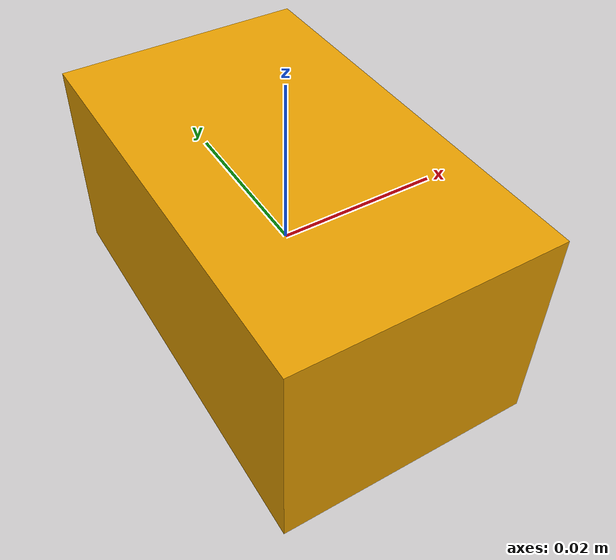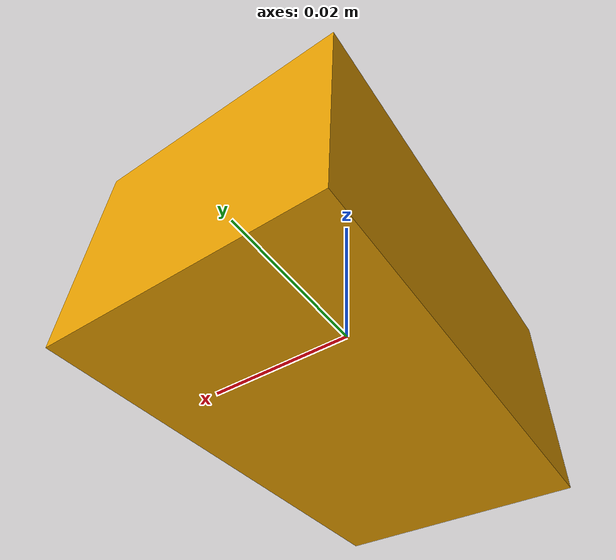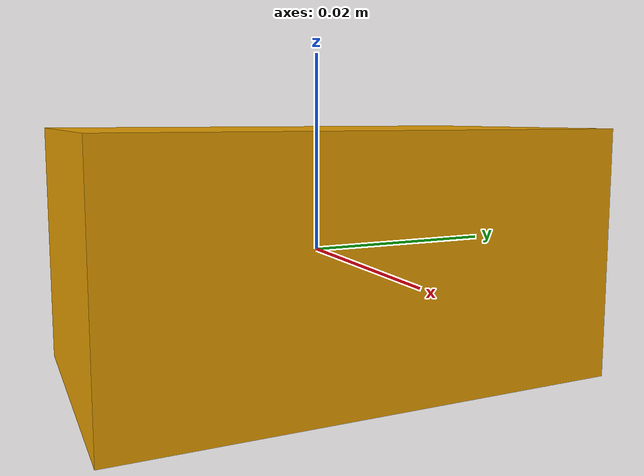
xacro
<?xml version="1.0"?>
<robot xmlns:xacro="http://www.ros.org/wiki/xacro" name="Robot 7">

<xacro:property name="total_weight" value="75" /> <!--KG-->
<xacro:property name="torso_weight" value="${total_weight * 0.6}" />
<xacro:property name="leg_weight" value="${total_weight * .15}" />
<xacro:property name="arm_weight" value="${total_weight * .05}" />
<xacro:property name="Cyan" value="0 1.0 1.0 1.0"/>
<xacro:property name="Lilac" value=".8 .6 1.0 1.0"/>

<xacro:macro name="solid_sphere_inertia_tensors" params="mass radius" >
    <inertial>
        <origin xyz="0.0 0.0 0.0" rpy="0.0 0.0 0.0"/>
        <mass value="${weight}"/>
        <inertia
        ixx="${(2/5) * mass * radius * radius}" ixy="0.0" ixz="0.0"
        iyy="${(2/5) * mass * radius * radius}" iyz="0.0"
        izz="${(2/5) * mass * radius * radius}  "/>
    </inertial>
</xacro:macro>

<xacro:macro name="hollow_sphere_inertia_tensors" params="mass radius" >
    <inertial>
        <origin xyz="0.0 0.0 0.0" rpy="0.0 0.0 0.0"/>
        <mass value="${weight}"/>
        <inertia
        ixx="${(2/3) * mass * radius * radius}" ixy="0.0" ixz="0.0"
        iyy="${(2/3) * mass * radius * radius}" iyz="0.0"
        izz="${(2/3) * mass * radius * radius}  "/>
    </inertial>
</xacro:macro>

<xacro:macro name="cuboid_inertia_tensors" params="mass length" >
    <inertial>
        <origin xyz="0.0 0.0 0.0" rpy="0.0 0.0 0.0"/>
        <mass value="${mass}"/>
        <inertia
        ixx="${(mass/12)*((length*length*.025)+(length*length*0.0225))}" ixy="0.0" ixz="0.0"
        iyy="${(mass/12)*((length*length)+(length*length*0.0225))}" iyz="0.0"
        izz="${(mass/12)*((length*length)+(length*length*0.025))}"/>
    </inertial>
</xacro:macro>

<xacro:macro name="cuboid" params="name mass x_len y_len z_len origin rpy">
    <link name="${name}">
        <visual>
            <geometry>
                <box size="${x_len} ${y_len} ${z_len}"/>
            </geometry>
            <origin xyz="${origin}" rpy="${rpy}"/>
        </visual>
        <collision>
            <geometry>
                <box size="${x_len} ${y_len} ${z_len}"/>
            </geometry>
            <origin xyz="${origin}" rpy="${rpy}"/>
        </collision>
        <xacro:cuboid_inertia_tensors mass="${mass}" length="${z_len}"/>
    </link>
</xacro:macro>

<xacro:macro name="revolve" params="name parent child hi lo axis offset">
    <joint name="${name}" type="revolute">
        <parent link="${parent}"/>
        <child link="${child}"/>
        <limit lower="${lo}" upper="${hi}" effort="20.0" velocity="20.0"/>
        <origin xyz="${offset}"/>
        <axis xyz="${axis}"/>
    </joint>
</xacro:macro>

<xacro:cuboid name="base_link" mass="${torso_weight * .12}" x_len=".03" y_len=".05" z_len=".025" origin="0 0 0" rpy="0 0 0"/>

<!-- Torso Links-->

<!-- Torso joints-->

<!-- Arm Links-->

<!-- Arm joints-->

<!-- Leg Links-->

<!-- Leg joints-->

</robot>
